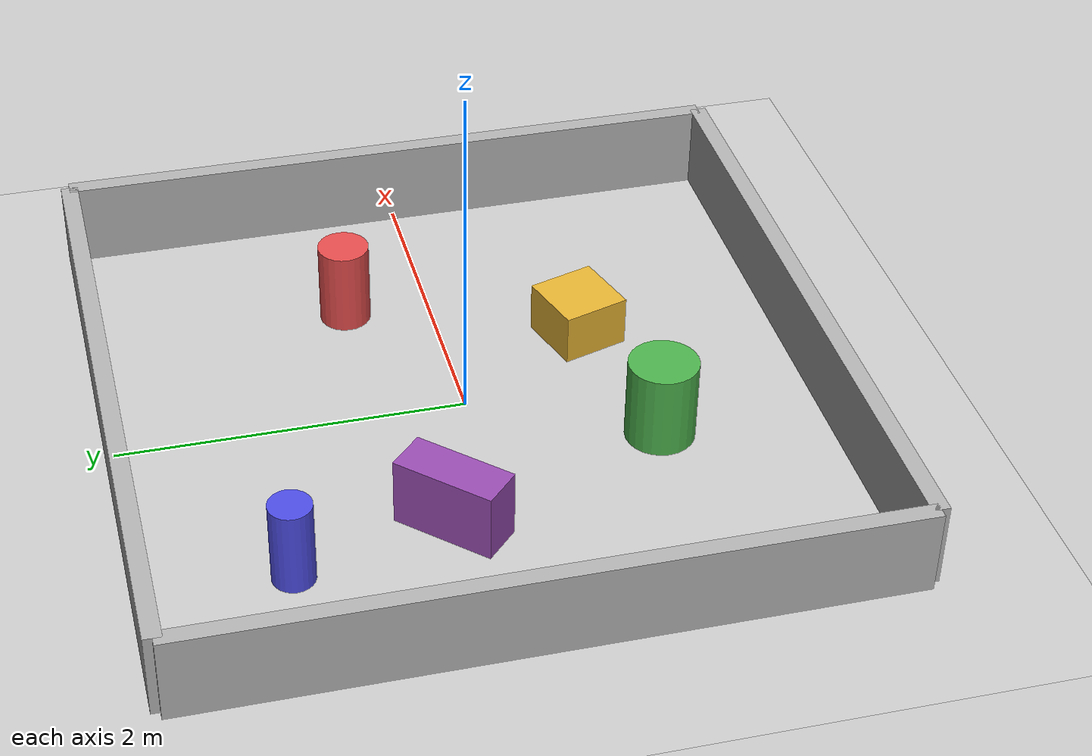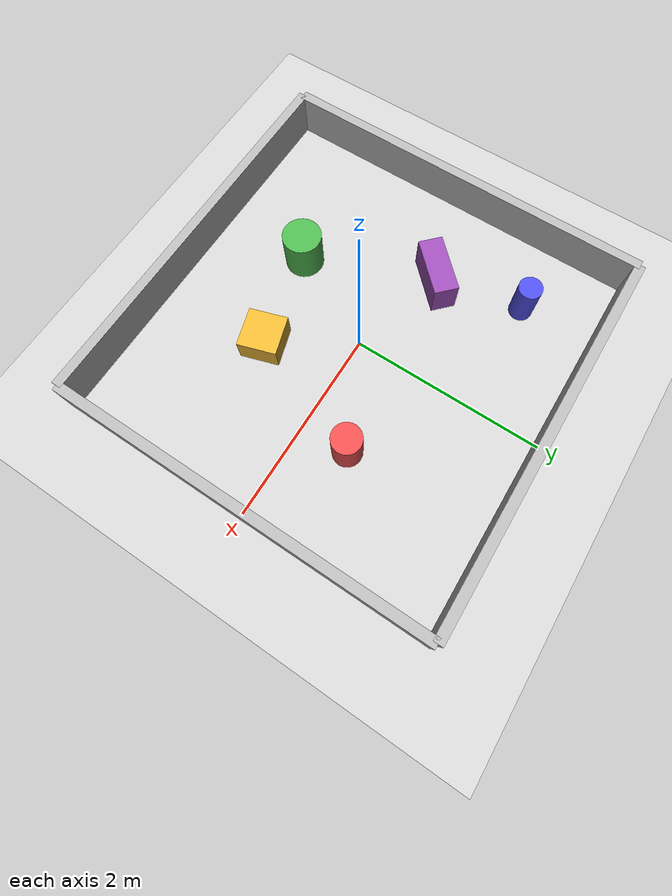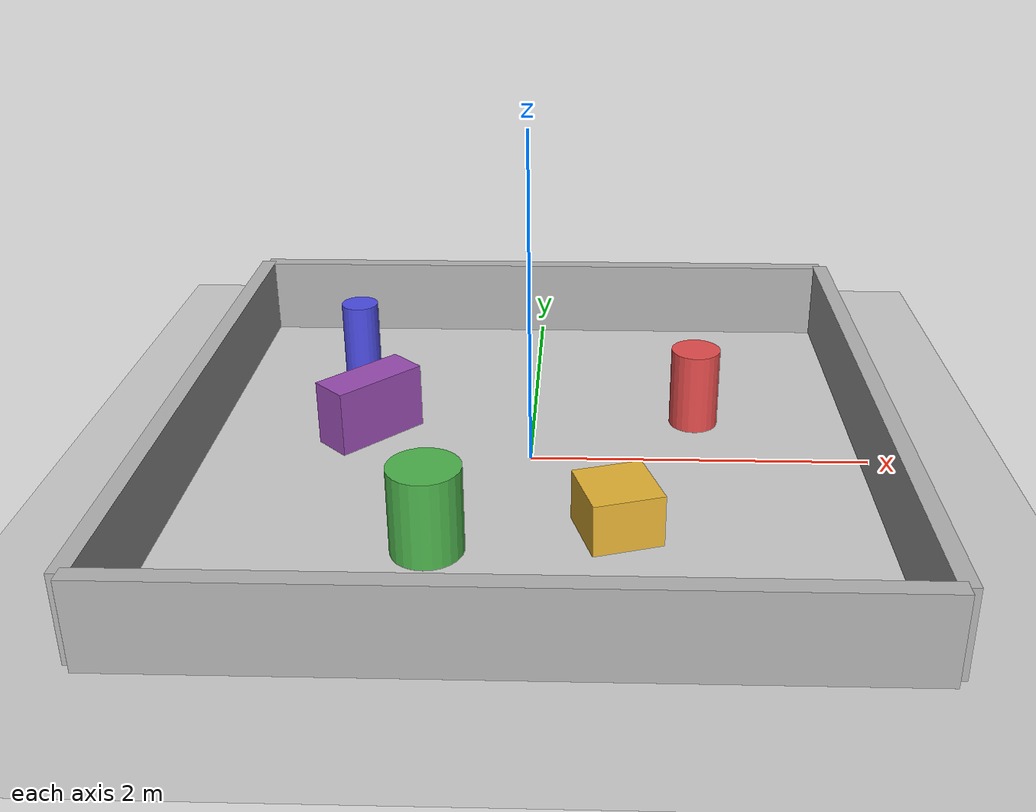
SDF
<?xml version="1.0"?>
<sdf version="1.6">
  <world name="obstacles_world">

    <!-- ==================== PHYSICS ==================== -->
    <physics type="ode">
      <real_time_update_rate>1000</real_time_update_rate>
      <max_step_size>0.001</max_step_size>
      <real_time_factor>1.0</real_time_factor>
    </physics>

    <!-- ==================== LIGHTING ==================== -->
    <light name="sun" type="directional">
      <cast_shadows>true</cast_shadows>
      <pose>0 0 10 0 0 0</pose>
      <diffuse>0.8 0.8 0.8 1</diffuse>
      <specular>0.2 0.2 0.2 1</specular>
      <direction>-0.5 0.1 -0.9</direction>
    </light>

    <light name="point_light" type="point">
      <pose>0 0 5 0 0 0</pose>
      <diffuse>0.5 0.5 0.5 1</diffuse>
      <specular>0.1 0.1 0.1 1</specular>
      <attenuation>
        <range>20</range>
        <constant>0.5</constant>
        <linear>0.01</linear>
        <quadratic>0.001</quadratic>
      </attenuation>
    </light>

    <!-- ==================== GROUND PLANE ==================== -->
    <include>
      <uri>model://ground_plane</uri>
    </include>

    <!-- ==================== ARENA WALLS ==================== -->
    <!-- North wall -->
    <model name="wall_north">
      <static>true</static>
      <pose>0 2.0 0.25 0 0 0</pose>
      <link name="link">
        <collision name="collision">
          <geometry><box><size>4.0 0.1 0.5</size></box></geometry>
        </collision>
        <visual name="visual">
          <geometry><box><size>4.0 0.1 0.5</size></box></geometry>
          <material>
            <ambient>0.6 0.6 0.6 1</ambient>
            <diffuse>0.7 0.7 0.7 1</diffuse>
          </material>
        </visual>
      </link>
    </model>

    <!-- South wall -->
    <model name="wall_south">
      <static>true</static>
      <pose>0 -2.0 0.25 0 0 0</pose>
      <link name="link">
        <collision name="collision">
          <geometry><box><size>4.0 0.1 0.5</size></box></geometry>
        </collision>
        <visual name="visual">
          <geometry><box><size>4.0 0.1 0.5</size></box></geometry>
          <material>
            <ambient>0.6 0.6 0.6 1</ambient>
            <diffuse>0.7 0.7 0.7 1</diffuse>
          </material>
        </visual>
      </link>
    </model>

    <!-- East wall -->
    <model name="wall_east">
      <static>true</static>
      <pose>2.0 0 0.25 0 0 1.5708</pose>
      <link name="link">
        <collision name="collision">
          <geometry><box><size>4.0 0.1 0.5</size></box></geometry>
        </collision>
        <visual name="visual">
          <geometry><box><size>4.0 0.1 0.5</size></box></geometry>
          <material>
            <ambient>0.6 0.6 0.6 1</ambient>
            <diffuse>0.7 0.7 0.7 1</diffuse>
          </material>
        </visual>
      </link>
    </model>

    <!-- West wall -->
    <model name="wall_west">
      <static>true</static>
      <pose>-2.0 0 0.25 0 0 1.5708</pose>
      <link name="link">
        <collision name="collision">
          <geometry><box><size>4.0 0.1 0.5</size></box></geometry>
        </collision>
        <visual name="visual">
          <geometry><box><size>4.0 0.1 0.5</size></box></geometry>
          <material>
            <ambient>0.6 0.6 0.6 1</ambient>
            <diffuse>0.7 0.7 0.7 1</diffuse>
          </material>
        </visual>
      </link>
    </model>

    <!-- ==================== OBSTACLES ==================== -->
    <!-- Cylinder 1 -->
    <model name="cylinder_obstacle_1">
      <static>true</static>
      <pose>1.0 0.5 0.25 0 0 0</pose>
      <link name="link">
        <collision name="collision">
          <geometry><cylinder><radius>0.15</radius><length>0.5</length></cylinder></geometry>
        </collision>
        <visual name="visual">
          <geometry><cylinder><radius>0.15</radius><length>0.5</length></cylinder></geometry>
          <material>
            <ambient>0.8 0.2 0.2 1</ambient>
            <diffuse>0.9 0.3 0.3 1</diffuse>
          </material>
        </visual>
      </link>
    </model>

    <!-- Cylinder 2 -->
    <model name="cylinder_obstacle_2">
      <static>true</static>
      <pose>-0.5 -1.0 0.25 0 0 0</pose>
      <link name="link">
        <collision name="collision">
          <geometry><cylinder><radius>0.2</radius><length>0.5</length></cylinder></geometry>
        </collision>
        <visual name="visual">
          <geometry><cylinder><radius>0.2</radius><length>0.5</length></cylinder></geometry>
          <material>
            <ambient>0.2 0.6 0.2 1</ambient>
            <diffuse>0.3 0.7 0.3 1</diffuse>
          </material>
        </visual>
      </link>
    </model>

    <!-- Cylinder 3 -->
    <model name="cylinder_obstacle_3">
      <static>true</static>
      <pose>-1.2 1.2 0.25 0 0 0</pose>
      <link name="link">
        <collision name="collision">
          <geometry><cylinder><radius>0.12</radius><length>0.5</length></cylinder></geometry>
        </collision>
        <visual name="visual">
          <geometry><cylinder><radius>0.12</radius><length>0.5</length></cylinder></geometry>
          <material>
            <ambient>0.2 0.2 0.8 1</ambient>
            <diffuse>0.3 0.3 0.9 1</diffuse>
          </material>
        </visual>
      </link>
    </model>

    <!-- Box obstacle 1 -->
    <model name="box_obstacle_1">
      <static>true</static>
      <pose>0.5 -0.8 0.15 0 0 0.3</pose>
      <link name="link">
        <collision name="collision">
          <geometry><box><size>0.4 0.4 0.3</size></box></geometry>
        </collision>
        <visual name="visual">
          <geometry><box><size>0.4 0.4 0.3</size></box></geometry>
          <material>
            <ambient>0.8 0.6 0.1 1</ambient>
            <diffuse>0.9 0.7 0.2 1</diffuse>
          </material>
        </visual>
      </link>
    </model>

    <!-- Box obstacle 2 -->
    <model name="box_obstacle_2">
      <static>true</static>
      <pose>-1.0 0.3 0.2 0 0 0.8</pose>
      <link name="link">
        <collision name="collision">
          <geometry><box><size>0.6 0.25 0.4</size></box></geometry>
        </collision>
        <visual name="visual">
          <geometry><box><size>0.6 0.25 0.4</size></box></geometry>
          <material>
            <ambient>0.5 0.2 0.6 1</ambient>
            <diffuse>0.6 0.3 0.7 1</diffuse>
          </material>
        </visual>
      </link>
    </model>

  </world>
</sdf>
